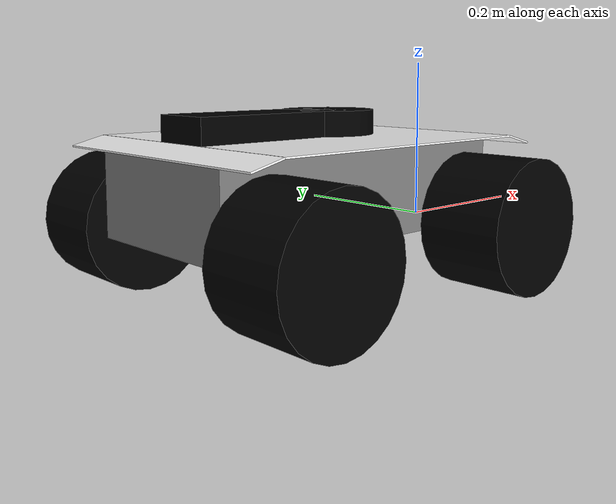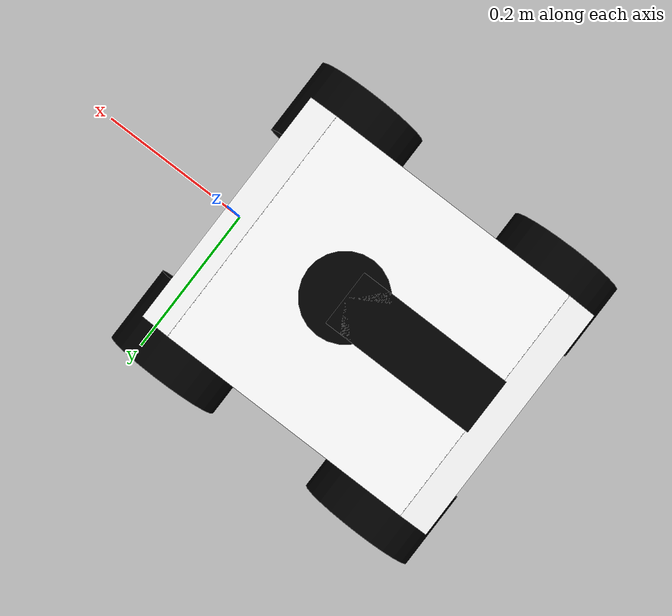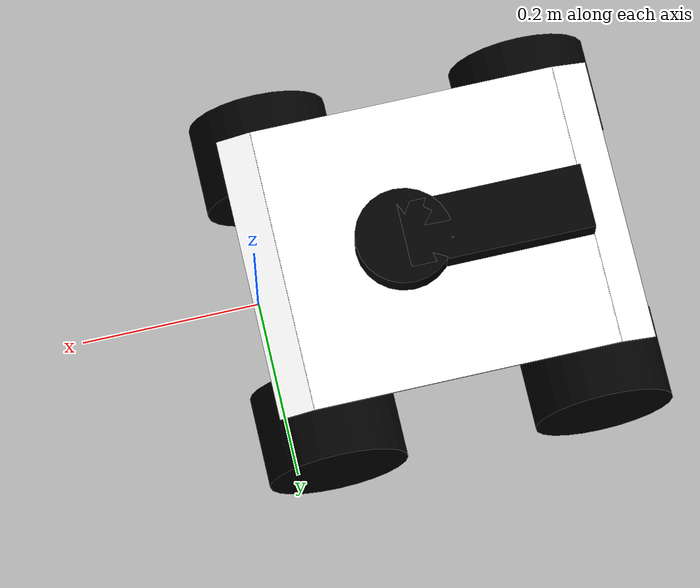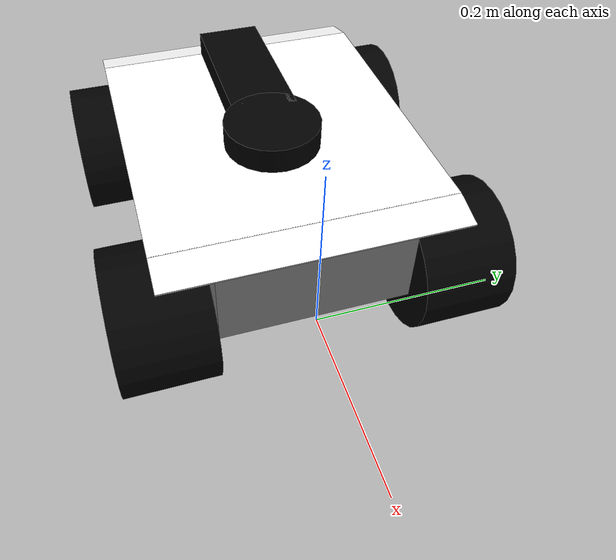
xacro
<?xmm version="1.0"?>
<robot xmlns:xacro="http://www.ros.org/wiki/xacro" name="aion_r1">

    <xacro:include filename="inertial_macros.xacro"/>

    <!-- MATERIALS / COLOURS -->
    <material name="white">
        <color rgba="1 1 1 1"/>
    </material>
    <material name="gray">
        <color rgba="0.5 0.5 0.5 1"/>
    </material>
    <material name="black">
        <color rgba="0 0 0 1"/>
    </material>

    <link name="aion_base_link">

        <collision>
            <origin xyz="-.20 0 0.0575"/>
            <geometry>
                <box size=".40 0.21 0.1"/>
            </geometry>

        </collision>

        <xacro:inertial_box mass="3.0" x="0.40" y="0.21" z="0.115">
            <origin xyz="-.20 0 0.0575"/>
        </xacro:inertial_box>

        <visual name="base">
            <origin xyz="-.20 0 0.0575"/>
            <geometry>
                <box size="0.40 0.21 0.1"/>
            </geometry>
            <material name="gray"/>
        </visual>
    </link>

      <!-- Top Plate -->
    <link name="top_plate_link">
        <visual name="top_plate">
            <origin xyz="0 0 0.0001"/>
            <geometry>
                <box size="0.343 0.324 0.002"/>
            </geometry>
            <material name="white"/>
        </visual>

        <collision>
            <origin xyz="0 0 0"/>
            <geometry>
                <box size="0.45 0.324 0.002"/>
            </geometry>

        </collision>

        <!-- Front Bumper -->
        <visual name="front_bumper">
            <origin xyz="0.19 0 -0.0048" rpy="0 0.25 0"/>
            <geometry>
                <box size="0.040 0.324 0.002"/>
            </geometry>
            <material name="white"/>
        </visual>

        <!-- Rear Bumper -->
        <visual name="front_bumper">
            <origin xyz="-0.19 0 -0.0048" rpy="0 -0.25 0"/>
            <geometry>
                <box size="0.040 0.324 0.002"/>
            </geometry>
            <material name="white"/>
        </visual>

        <xacro:inertial_box mass="0.100" x="0.40" y="0.324" z="0.0002">
            <origin xyz="0 0 0"/>
        </xacro:inertial_box>

    </link>

    <joint name="top_plate_joint" type="fixed">
        <parent link="aion_base_link"/>
        <child link="top_plate_link"/>
        <origin xyz="-0.2 0 0.115"/>
    </joint>

      <!-- User Rail -->
    <link name="user_rail_link">
        <visual name="user_rail">
            <origin xyz="-0.027 0 0.015"/>
            <geometry>
                <box size="0.206 0.073 0.03"/>
            </geometry>
            <material name="black"/>
        </visual>

        <visual name="user_rail_cylinder">
            <origin xyz="0.076 0 0.015"/>
            <geometry>
                <cylinder radius="0.054" length="0.03"/>
            </geometry>
            <material name="black"/>
        </visual>

        <xacro:inertial_box mass="0.400" x="0.26" y="0.073" z="0.03">
            <origin xyz="0 0 0"/>
        </xacro:inertial_box>

        <collision>
            <origin xyz="-0.027 0 0.015"/>
            <geometry>
                <box size="0.206 0.073 0.03"/>
            </geometry>
        </collision>
        <collision>
            <origin xyz="0.076 0 0.015"/>
            <geometry>
                <cylinder radius="0.054" length="0.03"/>
            </geometry>
        </collision>

    </link>

    <joint name="user_rail_joint" type="fixed">
        <parent link="top_plate_link"/>
        <child link="user_rail_link"/>
        <origin xyz="-0.0415 0 0"/>
    </joint>

    <!-- Back Left Wheel -->
    <link name="back_left_wheel">
        <origin xyz="0 0 -0.0501"/>

        <xacro:inertial_cylinder mass="0.100" radius="0.078" length="0.102">
            <origin xyz="0 0 0"/>
        </xacro:inertial_cylinder>

        <collision>
            <origin xyz="0 0 0" rpy="0 0 0"/>
            <geometry>
                <cylinder radius="0.078" length="0.102"/>
            </geometry>
        </collision>

        <visual>
            <origin xyz="0 0 0" rpy="0 0 0"/>
            <geometry>
                <cylinder radius="0.078" length="0.102"/>
            </geometry>
            <material name="black"/>
        </visual>
    </link>

    <joint name="back_left_joint" type="continuous">
        <parent link="aion_base_link"/>
        <child link="back_left_wheel"/>
        <origin xyz="-0.345 0.160 0.016" rpy="-${pi/2} 0 0"/>
        <axis xyz="0 0 1"/>
    </joint>

    <!-- Back Right Wheel -->
    <link name="back_right_wheel">
        <origin xyz="0 0 -0.0501"/>

        <xacro:inertial_cylinder mass="0.100" radius="0.078" length="0.102">
            <origin xyz="0 0 0"/>
        </xacro:inertial_cylinder>

        <collision>
            <origin xyz="0 0 0" rpy="0 0 0"/>
            <geometry>
                <cylinder radius="0.078" length="0.102"/>
            </geometry>
        </collision>

        <visual>
            <origin xyz="0 0 0" rpy="0 0 0"/>
            <geometry>
                <cylinder radius="0.078" length="0.102"/>
            </geometry>
            <material name="black"/>
        </visual>
    </link>

    <joint name="back_right_joint" type="continuous">
        <parent link="aion_base_link"/>
        <child link="back_right_wheel"/>
        <origin xyz="-0.345 -0.160 0.016" rpy="${pi/2} 0 0"/>
        <axis xyz="0 0 -1"/>
    </joint>

    <!-- Front Left Wheel -->
    <link name="front_left_wheel">
        <origin xyz="0 0 -0.0501"/>

        <xacro:inertial_cylinder mass="0.100" radius="0.078" length="0.102">
            <origin xyz="0 0 0"/>
        </xacro:inertial_cylinder>

        <collision>
            <origin xyz="0 0 0" rpy="0 0 0"/>
            <geometry>
                <cylinder radius="0.078" length="0.102"/>
            </geometry>
        </collision>

        <visual>
            <origin xyz="0 0 0" rpy="0 0 0"/>
            <geometry>
                <cylinder radius="0.078" length="0.102"/>
            </geometry>
            <material name="black"/>
        </visual>
    </link>

    <joint name="front_left_joint" type="continuous">
        <parent link="aion_base_link"/>
        <child link="front_left_wheel"/>
        <origin xyz="-0.0445 0.160 0.016" rpy="-${pi/2} 0 0"/>
        <axis xyz="0 0 1"/>
    </joint>

    <!-- Front Right Wheel -->
    <link name="front_right_wheel">
        <origin xyz="0.256 -0.285474 0.035" rpy="0 0 0"/>

        <xacro:inertial_cylinder mass="0.100" radius="0.078" length="0.102">
            <origin xyz="0 0 0"/>
        </xacro:inertial_cylinder>

        <collision>
            <origin xyz="0 0 0" rpy="0 0 0"/>
            <geometry>
                <cylinder radius="0.078" length="0.102"/>
            </geometry>
        </collision>

        <visual>
            <origin xyz="0 0 0" rpy="0 0 0"/>
            <geometry>
                <cylinder radius="0.078" length="0.102"/>
            </geometry>
            <material name="black"/>
        </visual>
    </link>

    <joint name="front_right_joint" type="continuous">
        <parent link="aion_base_link"/>
        <child link="front_right_wheel"/>
        <origin xyz="-0.0445 -0.160 0.016" rpy="${pi/2} 0 0"/>
        <axis xyz="0 0 -1"/>
    </joint>

</robot>
